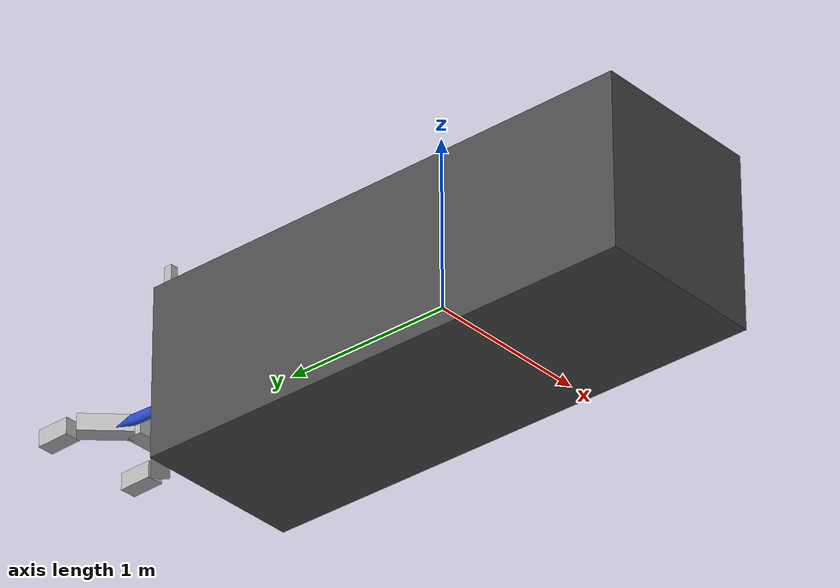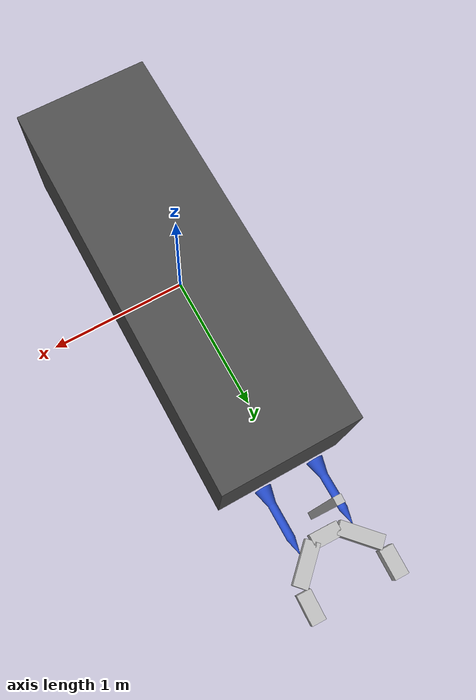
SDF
<?xml version="1.0"?>
<sdf version="1.4">
<!-- This file is originated from gazebo_auv_sim package by Gigmus: https://github.com/gigimus/gazebo-auv-sim -->
  <model name="auv_body">

    <link name="link">
      <velocity_decay>
        <linear>0.001</linear><!-- Do not know if this is a good decay coefficient-->
        <angular>0.001</angular>
      </velocity_decay>
      <inertial>
        <mass>40</mass>
      </inertial>
      <collision name="collision">
        <geometry>
          <box>
            <size>1 3 1</size>
          </box>
        </geometry>
      </collision>
      <visual name="visual">
        <geometry>
          <box>
            <size>1 3 1</size>
          </box>
        </geometry>
      <material>
        <script>
          <name>Gazebo/DarkGrey</name>
        </script>
      </material>
      </visual>
      <sensor name="imu" type="imu">
        <update_rate>10</update_rate>
        <pose>0 2 0.2 0 0 0</pose>
        <imu>
          <noise>
            <rate>
              <stddev>0.01</stddev>
            </rate>
            <accel>
              <stddev>0.01</stddev>
            </accel>
          </noise>
        </imu>
      </sensor>
    </link>

    <include>
      <uri>model://simple_gripper</uri>
      <pose>0 2 -0 0 0 1.54</pose>
    </include>

    <include>
      <name>left_torpedo</name>
      <uri>model://torpedo</uri>
      <pose>-0.2 1.5 0 0 0 0</pose>
    </include>

    <include>
      <name>right_torpedo</name>
      <uri>model://torpedo</uri>
      <pose>0.2 1.5 0 0 0 0</pose>
    </include>

    <joint name="gripper_joint" type="revolute">
      <parent>link</parent>
      <child>simple_gripper::riser</child>
      <axis>
        <xyz>0 0 1</xyz>
        <limit>
          <lower>0</lower>
          <upper>0</upper>
        </limit>
        <dynamics>
          <damping>0.0</damping>
        </dynamics>
      </axis>
    </joint>

    <joint name="left_torpedo_joint" type="ball">
      <parent>link</parent>
      <child>left_torpedo::link</child>
    </joint>

    <joint name="right_torpedo_joint" type="ball">
      <parent>link</parent>
      <child>right_torpedo::link</child>
    </joint>

  </model>

</sdf>

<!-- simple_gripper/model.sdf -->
<sdf version="1.5">
  <model name="simple_gripper">
    <link name="riser">
      <pose>-0.15 0.0 0.5 0 0 0</pose>
      <inertial>
        <mass>10</mass>
      </inertial>
      <collision name="collision">
        <geometry>
          <box>
            <size>0.05 0.05 1.0</size>
          </box>
        </geometry>
        <surface>
          <contact>
            <ode>
              <max_vel>0.0</max_vel>
            </ode>
          </contact>
        </surface>
      </collision>
      <visual name="visual">
        <geometry>
          <box>
            <size>0.05 0.05 1.0</size>
          </box>
        </geometry>
      </visual>
    </link>
    <link name="palm">
      <pose>0.0 0.0 0.05 0 0 0</pose>
      <inertial>
        <mass>0.5</mass>
      </inertial>
      <collision name="collision">
        <geometry>
          <box>
            <size>0.1 0.2 0.1</size>
          </box>
        </geometry>
        <surface>
          <contact>
            <ode>
              <max_vel>0.0</max_vel>
            </ode>
          </contact>
        </surface>
      </collision>
      <visual name="visual">
        <geometry>
          <box>
            <size>0.1 0.2 0.1</size>
          </box>
        </geometry>
      </visual>
    </link>
    <link name="left_finger">
      <pose>0.1 0.2 0.05 0 0 -0.78539</pose>
      <inertial>
        <mass>0.1</mass>
      </inertial>
      <collision name="collision">
        <geometry>
          <box>
            <size>0.1 0.3 0.1</size>
          </box>
        </geometry>
        <surface>
          <friction>
            <ode>
              <mu>0.1</mu>
              <mu2>0</mu2>
            </ode>
          </friction>
          <contact>
            <ode>
              <max_vel>0.0</max_vel>
            </ode>
          </contact>
        </surface>
      </collision>
      <visual name="visual">
        <geometry>
          <box>
            <size>0.1 0.3 0.1</size>
          </box>
        </geometry>
      </visual>
    </link>
    <link name="left_finger_tip">
      <pose>0.336 0.3 0.05 0 0 1.5707</pose>
      <inertial>
        <mass>0.5</mass>
      </inertial>
      <collision name="collision">
        <geometry>
          <box>
            <size>0.1 0.2 0.1</size>
          </box>
        </geometry>
        <surface>
          <friction>
            <ode>
              <mu>.1</mu>
              <mu2>0</mu2>
            </ode>
          </friction>
          <contact>
            <ode>
              <max_vel>0.0</max_vel>
            </ode>
          </contact>
        </surface>
      </collision>
      <visual name="visual">
        <geometry>
          <box>
            <size>0.1 0.2 0.1</size>
          </box>
        </geometry>
      </visual>
    </link>
    <link name="right_finger">
      <pose>0.1 -0.2 0.05 0 0 .78539</pose>
      <inertial>
        <mass>0.1</mass>
      </inertial>
      <collision name="collision">
        <geometry>
          <box>
            <size>0.1 0.3 0.1</size>
          </box>
        </geometry>
        <surface>
          <friction>
            <ode>
              <mu>0.1</mu>
              <mu2>0</mu2>
            </ode>
          </friction>
          <contact>
            <ode>
              <max_vel>0.0</max_vel>
            </ode>
          </contact>
        </surface>
      </collision>
      <visual name="visual">
        <geometry>
          <box>
            <size>0.1 0.3 0.1</size>
          </box>
        </geometry>
      </visual>
    </link>
    <link name="right_finger_tip">
      <pose>0.336 -0.3 0.05 0 0 1.5707</pose>
      <inertial>
        <mass>0.1</mass>
      </inertial>
      <collision name="collision">
        <geometry>
          <box>
            <size>0.1 0.2 0.1</size>
          </box>
        </geometry>
        <surface>
          <friction>
            <ode>
              <mu>0.1</mu>
              <mu2>0</mu2>
            </ode>
          </friction>
          <contact>
            <ode>
              <max_vel>0.0</max_vel>
            </ode>
          </contact>
        </surface>
      </collision>
      <visual name="visual">
        <geometry>
          <box>
            <size>0.1 0.2 0.1</size>
          </box>
        </geometry>
      </visual>
    </link>
    <joint name="palm_left_finger" type="revolute">
      <pose>0 -0.15 0 0 0 0</pose>
      <child>left_finger</child>
      <parent>palm</parent>
      <axis>
        <limit>
          <lower>-0.8</lower>
          <upper>0.8</upper>
        </limit>
        <xyz>0 0 1</xyz>
        <use_parent_model_frame>true</use_parent_model_frame>
      </axis>
    </joint>
    <joint name="left_finger_tip" type="revolute">
      <pose>0 0.1 0 0 0 0</pose>
      <child>left_finger_tip</child>
      <parent>left_finger</parent>
      <axis>
        <limit>
          <lower>-0.8</lower>
          <upper>0.8</upper>
        </limit>
        <xyz>0 0 1</xyz>
        <use_parent_model_frame>true</use_parent_model_frame>
      </axis>
    </joint>
    <joint name="palm_right_finger" type="revolute">
      <pose>0 0.15 0 0 0 0</pose>
      <child>right_finger</child>
      <parent>palm</parent>
      <axis>
        <limit>
          <lower>-0.8</lower>
          <upper>0.8</upper>
        </limit>
        <xyz>0 0 1</xyz>
        <use_parent_model_frame>true</use_parent_model_frame>
      </axis>
    </joint>
    <joint name="right_finger_tip" type="revolute">
      <pose>0 0.1 0 0 0 0</pose>
      <child>right_finger_tip</child>
      <parent>right_finger</parent>
      <axis>
        <limit>
          <lower>-0.8</lower>
          <upper>0.8</upper>
        </limit>
        <xyz>0 0 1</xyz>
        <use_parent_model_frame>true</use_parent_model_frame>
      </axis>
    </joint>
    <joint name="palm_riser" type="prismatic">
      <child>palm</child>
      <parent>riser</parent>
      <axis>
        <limit>
          <lower>0</lower>
          <upper>0.9</upper>
        </limit>
        <xyz>0 0 1</xyz>
        <use_parent_model_frame>true</use_parent_model_frame>
      </axis>
    </joint>
    <gripper name="simple_gripper">
      <grasp_check>
        <detach_steps>40</detach_steps>
        <attach_steps>20</attach_steps>
        <min_contact_count>2</min_contact_count>
      </grasp_check>
      <gripper_link>right_finger</gripper_link>
      <gripper_link>right_finger_tip</gripper_link>
      <gripper_link>left_finger</gripper_link>
      <gripper_link>left_finger_tip</gripper_link>
      <palm_link>palm</palm_link>
    </gripper>
  </model>
</sdf>

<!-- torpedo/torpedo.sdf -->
<sdf version="1.4">
<!-- This file is originated from gazebo_auv_sim package by Gigmus: https://github.com/gigimus/gazebo-auv-sim -->
  <model name="torpedo">
    <link name="link">
      <gravity>false</gravity>
      <inertial>
        <mass>0.01</mass>
      </inertial>
      <pose>0 0 0 -1.54 0 0</pose>

      <visual name="visual">
        <geometry>
          <mesh>
            <uri>model://torpedo/torpedo.dae</uri>
          </mesh>
        </geometry>
        <material>
        <script>
          <name>Gazebo/Blue</name>
        </script>
        </material>
      </visual>
      <collision name="collision">
        <geometry>
          <mesh>
            <uri>model://torpedo/torpedo.dae</uri>
          </mesh>
        </geometry>
      </collision>
    </link>
  </model>
</sdf>
